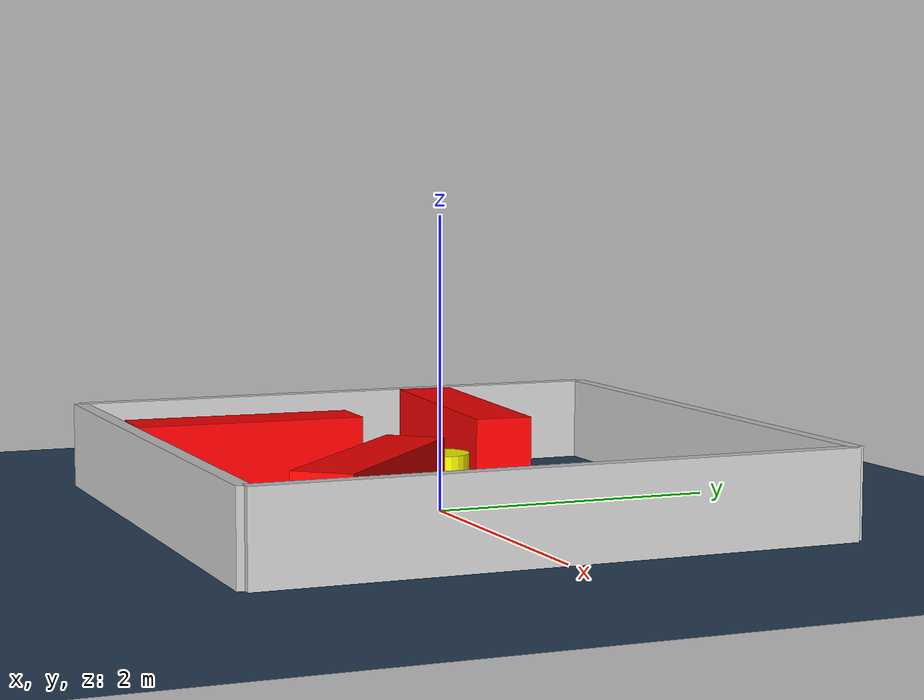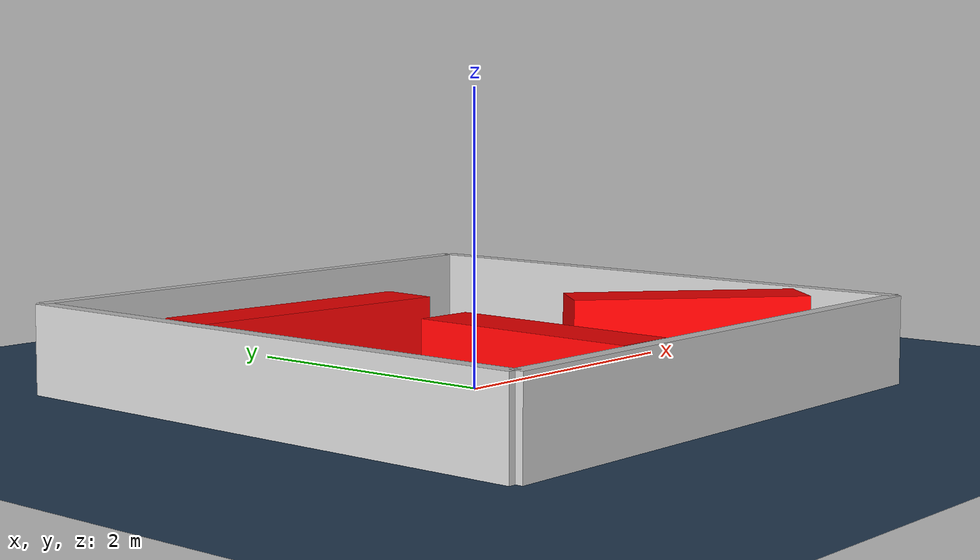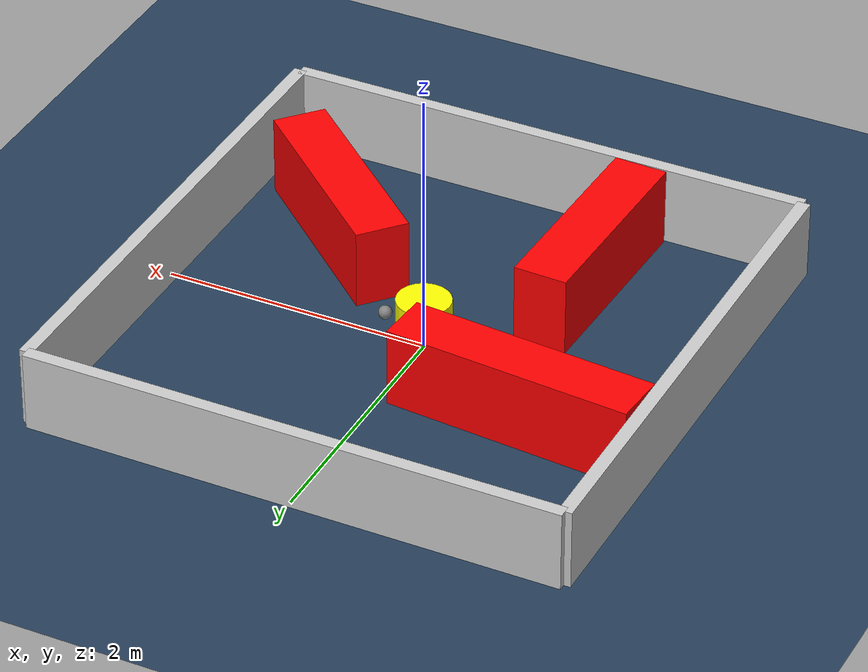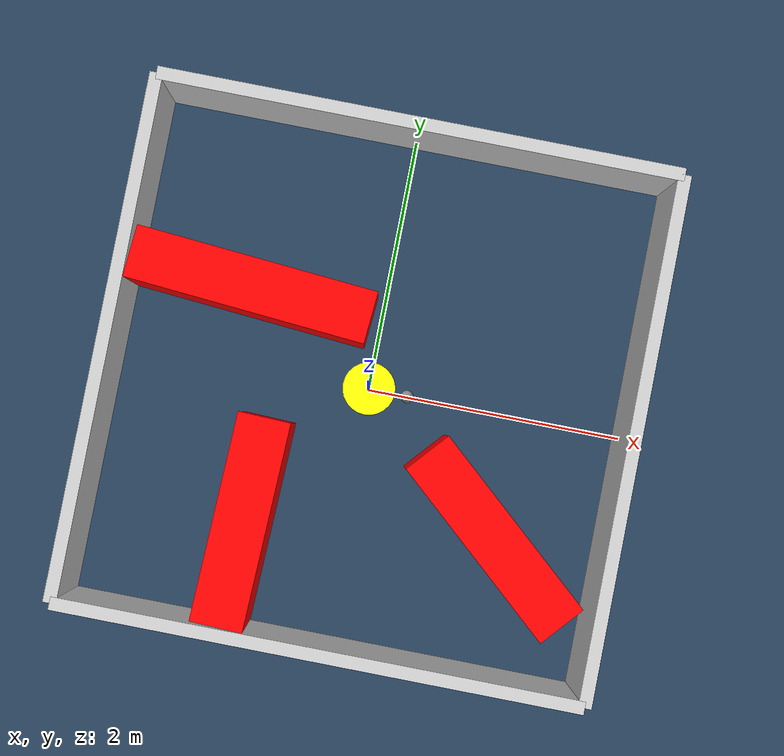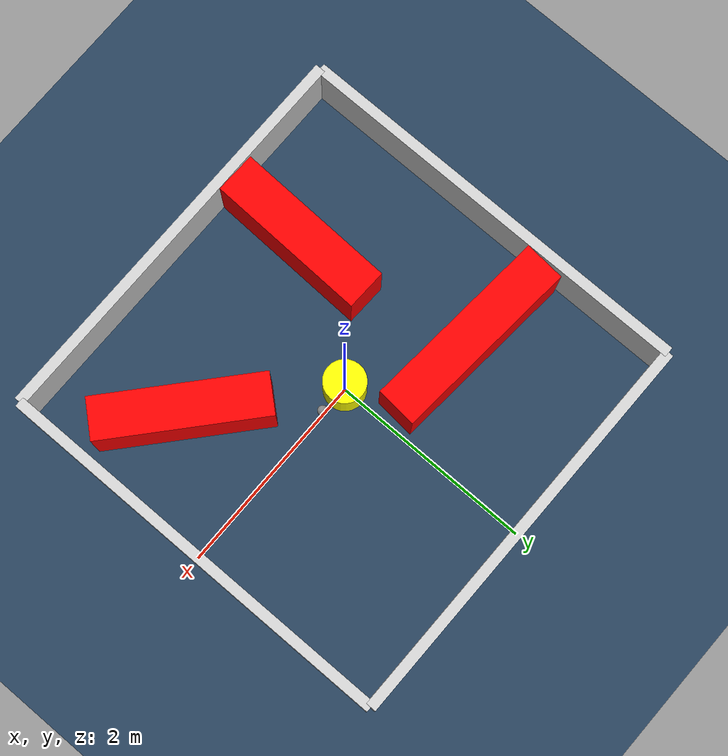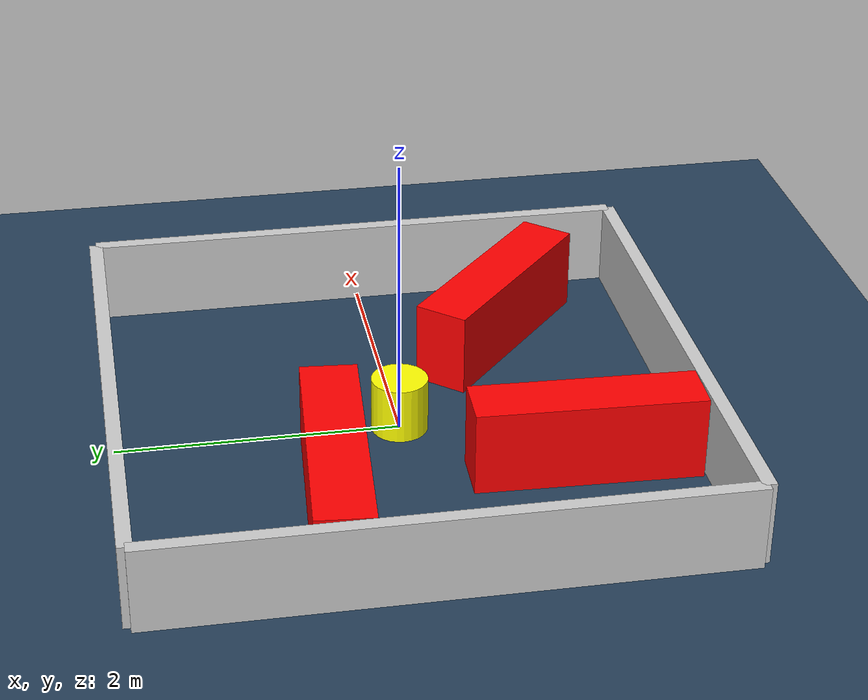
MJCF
<?xml version="1.0" ?>
<mujoco model="generated_environment">
  <option timestep="0.01" integrator="RK4" cone="elliptic"/>
  <default>
    <geom density="1"/>
  </default>
  <asset>
    <texture builtin="gradient" height="3072" rgb1="0.3 0.5 0.7" rgb2="0 0 0" type="skybox" width="512"/>
    <texture builtin="checker" height="300" mark="edge" markrgb="0.8 0.8 0.8" name="groundplane" rgb1="0.2 0.3 0.4" rgb2="0.1 0.2 0.3" type="2d" width="300"/>
    <material name="groundplane" reflectance="0.2" texrepeat="5 5" texture="groundplane" texuniform="true"/>
    <material name="robot" rgba="0.0 1.0 0.0 1"/>
  </asset>
  <worldbody>
    <light dir="0 0 -1" directional="true" pos="0 0 1.5"/>
    <geom condim="4" friction="1.0 0.005 0.001" material="groundplane" name="floor" size="0 0 0.05" type="plane"/>
    <body name="walls">
      <geom name="wall_1" condim="4" pos="-2.0 0.0 0.3" rgba="0.800000011920929 0.800000011920929 0.800000011920929 1.0" size="0.05 2.0 0.3" type="box"/>
      <geom name="wall_2" condim="4" pos="2.0 0.0 0.3" rgba="0.800000011920929 0.800000011920929 0.800000011920929 1.0" size="0.05 2.0 0.3" type="box"/>
      <geom name="wall_3" condim="4" pos="0.0 -2.0 0.3" rgba="0.800000011920929 0.800000011920929 0.800000011920929 1.0" size="2.0 0.05 0.3" type="box"/>
      <geom name="wall_4" condim="4" pos="0.0 2.0 0.3" rgba="0.800000011920929 0.800000011920929 0.800000011920929 1.0" size="2.0 0.05 0.3" type="box"/>
    </body>
    <body name="robot">
      <joint name="joint_x" type="slide" pos="0 0 0" axis="1 0 0"/>
      <joint name="joint_y" type="slide" pos="0 0 0" axis="0 1 0"/>
      <geom name="robot" type="sphere" pos="0.3 0.0 0.2" size="0.05" mass="5." friction="1.0 0.005 0.0001" condim="4" rgba="0.5 0.5 0.5 1.0"/>
      <site name="sensor_ball"/>
    </body>
    <body name="obstacle_movable_1">
      <geom name="obstacle_movable_1" condim="4" pos="0.0 0.0 0.2" euler="0 0 0.0" friction="1.0 0.005 0.001" rgba="1.0 1.0 0.0 1.0" size="0.2 0.2 0.0" type="cylinder" mass="0.1"/>
      <joint type="free"/>
    </body>
    <body name="obstacle_2_static">
      <geom name="obstacle_2_static" condim="4" pos="-0.7415994748610351 -1.1501304291794638 0.3" euler="0 0 88.02234300653649" friction="1.0 0.005 0.001" rgba="1 0 0 1" size="0.7905599999910897 0.2 0.3" type="box"/>
    </body>
    <body name="obstacle_3_static">
      <geom name="obstacle_3_static" condim="4" pos="1.1196750332928829 -0.9172948349802104 0.3" euler="0 0 138.6783518071469" friction="1.0 0.005 0.001" rgba="1 0 0 1" size="0.8064834058668315 0.2 0.3" type="box"/>
    </body>
    <body name="obstacle_4_static">
      <geom name="obstacle_4_static" condim="4" pos="-1.0078715047185063 0.5858754953869154 0.3" euler="0 0 175.34899126904762" friction="1.0 0.005 0.001" rgba="1 0 0 1" size="0.9266901301733115 0.2 0.3" type="box"/>
    </body>
  </worldbody>
  <actuator>
    <motor name="actuator_x" joint="joint_x" gear="1" ctrlrange="-1 1"/>
    <motor name="actuator_y" joint="joint_y" gear="1" ctrlrange="-1 1"/>
  </actuator>
</mujoco>
